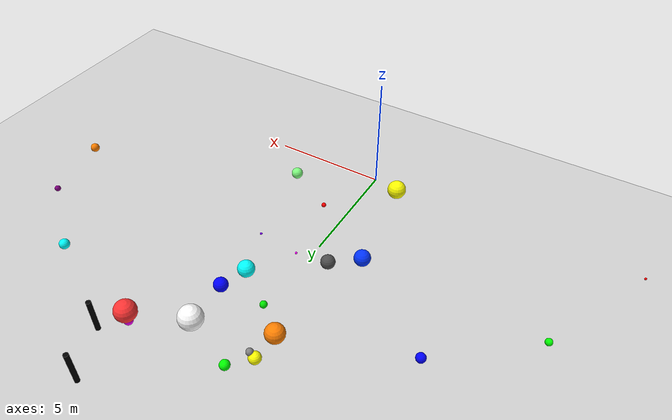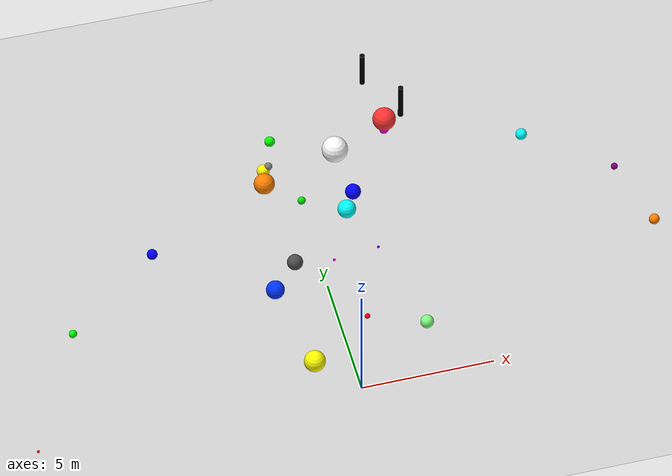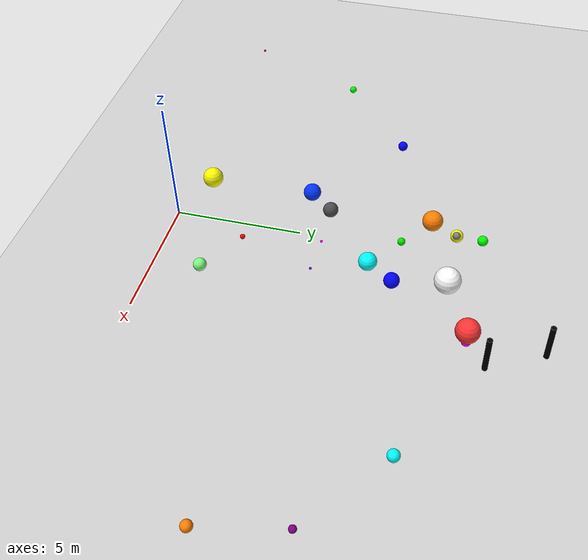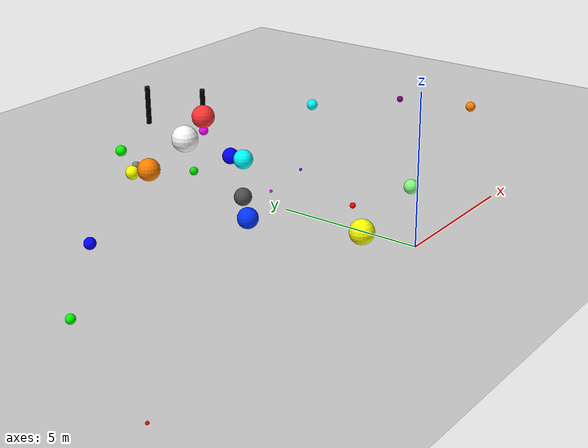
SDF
<sdf version="1.6">
 <world name="default">
  <model name="ground_plane">
   <static>1</static>
   <link name="link">
    <collision name="collision">
     <geometry><plane><normal>0 0 1</normal><size>100 100</size></plane></geometry>
     <surface><friction><ode><mu>100</mu><mu2>50</mu2></ode></friction></surface>
    </collision>
    <visual name="visual">
     <geometry><plane><normal>0 0 1</normal><size>100 100</size></plane></geometry>
     <material>
      <script><uri>file://media/materials/scripts/gazebo.material</uri><name>Gazebo/Grey</name></script>
     </material>
    </visual>
   </link>
  </model>
  <model name="static_sphere_1">
   <static>true</static>
   <link name="sphere_link_1">
    <pose>1 3 0.3 0 0 0</pose>
    <visual name="visual_1">
     <geometry><sphere><radius>0.1</radius></sphere></geometry>
     <material><ambient>1 0 0 1</ambient></material>
    </visual>
    <collision name="collision_1"><geometry><sphere><radius>0.1</radius></sphere></geometry></collision>
   </link>
  </model>
  <model name="static_sphere_2">
   <static>true</static>
   <link name="sphere_link_2">
    <pose>-0.5 12 0.7 0 0 0</pose>
    <visual name="visual_2">
     <geometry><sphere><radius>0.2</radius></sphere></geometry>
     <material><ambient>0 1 0 1</ambient></material>
    </visual>
    <collision name="collision_2"><geometry><sphere><radius>0.2</radius></sphere></geometry></collision>
   </link>
  </model>
  <model name="static_sphere_3">
   <static>true</static>
   <link name="sphere_link_3">
    <pose>2 9 0.4 0 0 0</pose>
    <visual name="visual_3">
     <geometry><sphere><radius>0.3</radius></sphere></geometry>
     <material><ambient>0 0 1 1</ambient></material>
    </visual>
    <collision name="collision_3"><geometry><sphere><radius>0.3</radius></sphere></geometry></collision>
   </link>
  </model>
  <model name="static_sphere_4">
   <static>true</static>
   <link name="sphere_link_4">
    <pose>-1.5 1 0.8 0 0 0</pose>
    <visual name="visual_4">
     <geometry><sphere><radius>0.4</radius></sphere></geometry>
     <material><ambient>1 1 0 1</ambient></material>
    </visual>
    <collision name="collision_4"><geometry><sphere><radius>0.4</radius></sphere></geometry></collision>
   </link>
  </model>
  <model name="static_sphere_5">
   <static>true</static>
   <link name="sphere_link_5">
    <pose>0.5 6 0.25 0 0 0</pose>
    <visual name="visual_5">
     <geometry><sphere><radius>0.05</radius></sphere></geometry>
     <material><ambient>1 0 1 1</ambient></material>
    </visual>
    <collision name="collision_5"><geometry><sphere><radius>0.05</radius></sphere></geometry></collision>
   </link>
  </model>
  <model name="static_sphere_6">
   <static>true</static>
   <link name="sphere_link_6">
    <pose>1.5 8 0.65 0 0 0</pose>
    <visual name="visual_6">
     <geometry><sphere><radius>0.35</radius></sphere></geometry>
     <material><ambient>0 1 1 1</ambient></material>
    </visual>
    <collision name="collision_6"><geometry><sphere><radius>0.35</radius></sphere></geometry></collision>
   </link>
  </model>
  <model name="static_sphere_7">
   <static>true</static>
   <link name="sphere_link_7">
    <pose>-0.8 11 0.45 0 0 0</pose>
    <visual name="visual_7">
     <geometry><sphere><radius>0.15</radius></sphere></geometry>
     <material><ambient>0.5 0.5 0.5 1</ambient></material>
    </visual>
    <collision name="collision_7"><geometry><sphere><radius>0.15</radius></sphere></geometry></collision>
   </link>
  </model>
  <model name="static_sphere_8">
   <static>true</static>
   <link name="sphere_link_8">
    <pose>3 2 0.55 0 0 0</pose>
    <visual name="visual_8">
     <geometry><sphere><radius>0.25</radius></sphere></geometry>
     <material><ambient>0.5 1 0.5 1</ambient></material>
    </visual>
    <collision name="collision_8"><geometry><sphere><radius>0.25</radius></sphere></geometry></collision>
   </link>
  </model>
  <model name="static_sphere_9">
   <static>true</static>
   <link name="sphere_link_9">
    <pose>-1.2 10 0.65 0 0 0</pose>
    <visual name="visual_9">
     <geometry><sphere><radius>0.4</radius></sphere></geometry>
     <material><ambient>1 0.5 0 1</ambient></material>
    </visual>
    <collision name="collision_9"><geometry><sphere><radius>0.4</radius></sphere></geometry></collision>
   </link>
  </model>
  <model name="static_sphere_10">
   <static>true</static>
   <link name="sphere_link_10">
    <pose>2.2 6 0.5 0 0 0</pose>
    <visual name="visual_10">
     <geometry><sphere><radius>0.05</radius></sphere></geometry>
     <material><ambient>0.5 0 1 1</ambient></material>
    </visual>
    <collision name="collision_10"><geometry><sphere><radius>0.05</radius></sphere></geometry></collision>
   </link>
  </model>
  <model name="static_sphere_11">
   <static>true</static>
   <link name="sphere_link_11">
    <pose>4 12 0.75 0 0 0</pose>
    <visual name="visual_11">
     <geometry><sphere><radius>0.45</radius></sphere></geometry>
     <material><ambient>1 0.2 0.2 1</ambient></material>
    </visual>
    <collision name="collision_11"><geometry><sphere><radius>0.45</radius></sphere></geometry></collision>
   </link>
  </model>
  <model name="static_sphere_12">
   <static>true</static>
   <link name="sphere_link_12">
    <pose>-2 5 0.4 0 0 0</pose>
    <visual name="visual_12">
     <geometry><sphere><radius>0.35</radius></sphere></geometry>
     <material><ambient>0 0.2 1 1</ambient></material>
    </visual>
    <collision name="collision_12"><geometry><sphere><radius>0.35</radius></sphere></geometry></collision>
   </link>
  </model>
  <model name="static_sphere_13">
   <static>true</static>
   <link name="sphere_link_13">
    <pose>0 9 0.45 0 0 0</pose>
    <visual name="visual_13">
     <geometry><sphere><radius>0.15</radius></sphere></geometry>
     <material><ambient>0 0.9 0 1</ambient></material>
    </visual>
    <collision name="collision_13"><geometry><sphere><radius>0.15</radius></sphere></geometry></collision>
   </link>
  </model>
  <model name="static_sphere_14">
   <static>true</static>
   <link name="sphere_link_14">
    <pose>1.8 11 0.7 0 0 0</pose>
    <visual name="visual_14">
     <geometry><sphere><radius>0.5</radius></sphere></geometry>
     <material><ambient>1 1 1 1</ambient></material>
    </visual>
    <collision name="collision_14"><geometry><sphere><radius>0.5</radius></sphere></geometry></collision>
   </link>
  </model>
  <model name="static_sphere_15">
   <static>true</static>
   <link name="sphere_link_15">
    <pose>-1 6 0.55 0 0 0</pose>
    <visual name="visual_15">
     <geometry><sphere><radius>0.3</radius></sphere></geometry>
     <material><ambient>0.3 0.3 0.3 1</ambient></material>
    </visual>
    <collision name="collision_15"><geometry><sphere><radius>0.3</radius></sphere></geometry></collision>
   </link>
  </model>
  <model name="half_circle_sphere_1">
   <static>true</static>
   <pose>-12 0 0.05 0 0 0</pose>
   <link name="half_circle_sphere_link_1">
    <visual name="half_circle_sphere_visual_1">
     <geometry><sphere><radius>0.05</radius></sphere></geometry>
     <material><ambient>1 0 0 1</ambient></material>
    </visual>
   </link>
  </model>
  <model name="half_circle_sphere_2">
   <static>true</static>
   <pose>-9.66 5 0.15 0 0 0</pose>
   <link name="half_circle_sphere_link_2">
    <visual name="half_circle_sphere_visual_2">
     <geometry><sphere><radius>0.15</radius></sphere></geometry>
     <material><ambient>0 1 0 1</ambient></material>
    </visual>
   </link>
  </model>
  <model name="half_circle_sphere_3">
   <static>true</static>
   <pose>-6 8 0.2 0 0 0</pose>
   <link name="half_circle_sphere_link_3">
    <visual name="half_circle_sphere_visual_3">
     <geometry><sphere><radius>0.2</radius></sphere></geometry>
     <material><ambient>0 0 1 1</ambient></material>
    </visual>
   </link>
  </model>
  <model name="half_circle_sphere_4">
   <static>true</static>
   <pose>-1 11 0.25 0 0 0</pose>
   <link name="half_circle_sphere_link_4">
    <visual name="half_circle_sphere_visual_4">
     <geometry><sphere><radius>0.25</radius></sphere></geometry>
     <material><ambient>1 1 0 1</ambient></material>
    </visual>
   </link>
  </model>
  <model name="half_circle_sphere_5">
   <static>true</static>
   <pose>4 12 0.18 0 0 0</pose>
   <link name="half_circle_sphere_link_5">
    <visual name="half_circle_sphere_visual_5">
     <geometry><sphere><radius>0.18</radius></sphere></geometry>
     <material><ambient>1 0 1 1</ambient></material>
    </visual>
   </link>
  </model>
  <model name="half_circle_sphere_6">
   <static>true</static>
   <pose>9 10.4 0.22 0 0 0</pose>
   <link name="half_circle_sphere_link_6">
    <visual name="half_circle_sphere_visual_6">
     <geometry><sphere><radius>0.22</radius></sphere></geometry>
     <material><ambient>0 1 1 1</ambient></material>
    </visual>
   </link>
  </model>
  <model name="half_circle_sphere_7">
   <static>true</static>
   <pose>12 8 0.13 0 0 0</pose>
   <link name="half_circle_sphere_link_7">
    <visual name="half_circle_sphere_visual_7">
     <geometry><sphere><radius>0.13</radius></sphere></geometry>
     <material><ambient>0.5 0 0.5 1</ambient></material>
    </visual>
   </link>
  </model>
  <model name="half_circle_sphere_8">
   <static>true</static>
   <pose>12.66 5 0.2 0 0 0</pose>
   <link name="half_circle_sphere_link_8">
    <visual name="half_circle_sphere_visual_8">
     <geometry><sphere><radius>0.2</radius></sphere></geometry>
     <material><ambient>1 0.5 0 1</ambient></material>
    </visual>
   </link>
  </model>
  <model name="weak_sun">
   <static>true</static>
   <link name="sun_light_link">
    <pose>0 0 100 0 0 0</pose>
    <light type="directional" name="sun_light">
     <diffuse>0.7 0.7 0.7 1</diffuse>
     <specular>0.15 0.15 0.15 1</specular>
     <attenuation>
      <range>1000</range>
      <constant>1.0</constant>
      <linear>0.001</linear>
      <quadratic>0.0001</quadratic>
     </attenuation>
     <direction>-1 -1 -1</direction>
    </light>
   </link>
  </model>
  <model name="spot_light_1">
   <static>true</static>
   <link name="spot_light_link_1">
    <pose>0 0 2 0 0 0</pose>
    <light type="spot" name="spot_light_1">
     <pose>0 0 2 0 0 0</pose>
     <diffuse>1 1 1 1</diffuse>
     <specular>0.1 0.1 0.1 1</specular>
     <attenuation>
      <range>20</range>
      <constant>0.5</constant>
      <linear>0.01</linear>
      <quadratic>0.001</quadratic>
     </attenuation>
     <direction>0 0 -1</direction>
     <spot><inner_angle>1.0</inner_angle><outer_angle>1.5</outer_angle><falloff>0.2</falloff></spot>
    </light>
   </link>
  </model>
  <model name="spot_light_2">
   <static>true</static>
   <link name="spot_light_link_2">
    <pose>1 5 2 0 0 0</pose>
    <light type="spot" name="spot_light_2">
     <pose>0 0 2 0 0 0</pose>
     <diffuse>1 1 1 1</diffuse>
     <specular>0.1 0.1 0.1 1</specular>
     <attenuation>
      <range>20</range>
      <constant>0.5</constant>
      <linear>0.01</linear>
      <quadratic>0.001</quadratic>
     </attenuation>
     <direction>0 0 -1</direction>
     <spot><inner_angle>1.0</inner_angle><outer_angle>1.5</outer_angle><falloff>0.2</falloff></spot>
    </light>
   </link>
  </model>
  <model name="spot_light_3">
   <static>true</static>
   <link name="spot_light_link_3">
    <pose>2 10 2 0 0 0</pose>
    <light type="spot" name="spot_light_3">
     <pose>0 0 2 0 0 0</pose>
     <diffuse>1 1 1 1</diffuse>
     <specular>0.1 0.1 0.1 1</specular>
     <attenuation>
      <range>20</range>
      <constant>0.5</constant>
      <linear>0.01</linear>
      <quadratic>0.001</quadratic>
     </attenuation>
     <direction>0 0 -1</direction>
     <spot><inner_angle>1.0</inner_angle><outer_angle>1.5</outer_angle><falloff>0.2</falloff></spot>
    </light>
   </link>
  </model>
  <model name="goal_left_post">
   <static>true</static>
   <pose>3.85 14.75 0.5 0 0 0</pose>
   <link name="goal_left_post_link">
    <visual name="goal_left_post_visual">
     <geometry><cylinder><radius>0.1</radius><length>2</length></cylinder></geometry>
     <material><ambient>0 0 0 1</ambient></material>
    </visual>
   </link>
  </model>
  <model name="goal_right_post">
   <static>true</static>
   <pose>4.85 12.75 0.5 0 0 0</pose>
   <link name="goal_right_post_link">
    <visual name="goal_right_post_visual">
     <geometry><cylinder><radius>0.1</radius><length>2</length></cylinder></geometry>
     <material><ambient>0 0 0 1</ambient></material>
    </visual>
   </link>
  </model>
  <gravity>0 0 -9.8</gravity>
  <magnetic_field>6e-06 2.3e-05 -4.2e-05</magnetic_field>
  <atmosphere type="adiabatic"/>
  <physics name="default_physics" default="0" type="ode">
   <max_step_size>0.001</max_step_size>
   <real_time_factor>1</real_time_factor>
   <real_time_update_rate>1000</real_time_update_rate>
  </physics>
  <scene><ambient>0.4 0.4 0.4 1</ambient><background>0.7 0.7 0.7 1</background><shadows>1</shadows></scene>
  <audio><device>default</device></audio>
  <spherical_coordinates>
   <surface_model>EARTH_WGS84</surface_model>
   <latitude_deg>0</latitude_deg>
   <longitude_deg>0</longitude_deg>
   <elevation>0</elevation>
   <heading_deg>0</heading_deg>
  </spherical_coordinates>
 </world>
</sdf>
